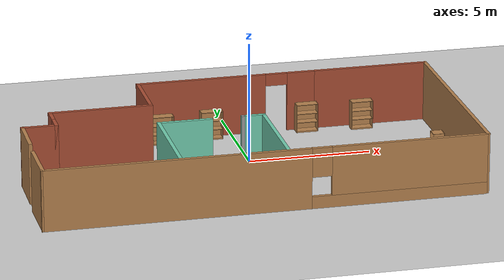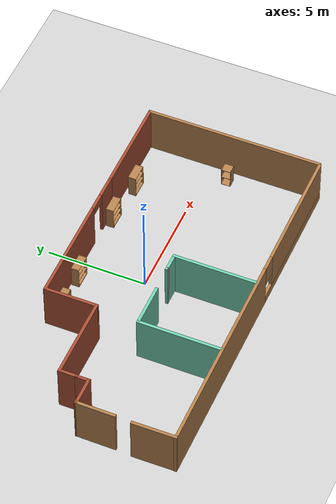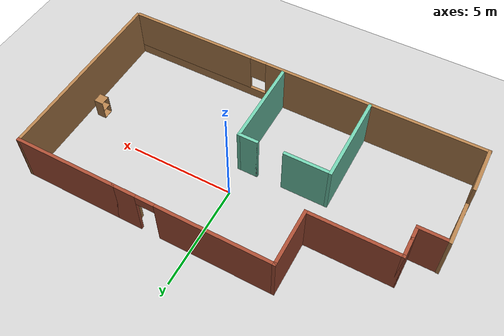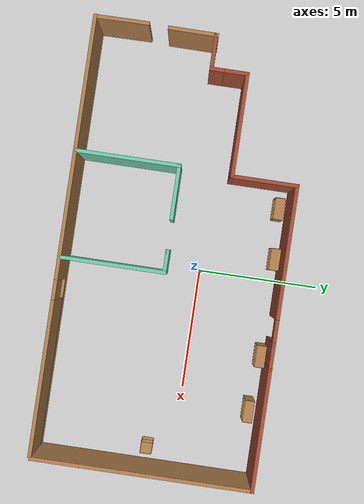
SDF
<sdf version="1.6">
 <world name="default">
  <light name="sun" type="directional">
   <pose>0 0 10 0 -0 0</pose>
   <diffuse>0.8 0.8 0.8 1</diffuse>
   <specular>0.2 0.2 0.2 1</specular>
   <attenuation>
    <range>1000</range>
    <constant>0.9</constant>
    <linear>0.01</linear>
    <quadratic>0.001</quadratic>
   </attenuation>
   <direction>-0.5 0.1 -0.9</direction>
  </light>
  <model name="ground_plane">
   <static>1</static>
   <link name="link">
    <collision name="collision">
     <geometry><plane><normal>0 0 1</normal><size>100 100</size></plane></geometry>
     <surface>
      <contact><collide_bitmask>65535</collide_bitmask></contact>
      <friction><ode><mu>100</mu><mu2>50</mu2></ode></friction>
     </surface>
    </collision>
    <visual name="visual">
     <cast_shadows>0</cast_shadows>
     <geometry><plane><normal>0 0 1</normal><size>100 100</size></plane></geometry>
     <material>
      <script><uri>file://media/materials/scripts/gazebo.material</uri><name>Gazebo/Grey</name></script>
     </material>
    </visual>
   </link>
  </model>
  <gravity>0 0 -9.8</gravity>
  <magnetic_field>6e-06 2.3e-05 -4.2e-05</magnetic_field>
  <atmosphere type="adiabatic"/>
  <physics name="default_physics" default="0" type="ode">
   <max_step_size>0.001</max_step_size>
   <real_time_factor>1</real_time_factor>
   <real_time_update_rate>1000</real_time_update_rate>
  </physics>
  <scene><ambient>0.4 0.4 0.4 1</ambient><background>0.7 0.7 0.7 1</background><shadows>1</shadows></scene>
  <spherical_coordinates>
   <surface_model>EARTH_WGS84</surface_model>
   <latitude_deg>0</latitude_deg>
   <longitude_deg>0</longitude_deg>
   <elevation>0</elevation>
   <heading_deg>0</heading_deg>
  </spherical_coordinates>
  <model name="smallspace.world">
   <pose>-0.55536 -1.14533 0 0 -0 0</pose>
   <link name="Wall_0">
    <collision name="Wall_0_Collision">
     <geometry><box><size>2.25 0.15 2.5</size></box></geometry>
     <pose>0 0 1.25 0 -0 0</pose>
    </collision>
    <visual name="Wall_0_Visual">
     <pose>0 0 1.25 0 -0 0</pose>
     <geometry><box><size>2.25 0.15 2.5</size></box></geometry>
     <material>
      <script><uri>file://media/materials/scripts/gazebo.material</uri><name>Gazebo/Wood</name></script>
      <ambient>1 1 1 1</ambient>
     </material>
     <meta><layer>0</layer></meta>
    </visual>
    <pose>-8.84464 -3.40467 0 0 -0 -1.56127</pose>
   </link>
   <link name="Wall_1">
    <pose>-0.044645 -4.45467 0 0 -0 0</pose>
    <visual name="Wall_1_Visual_0">
     <pose>-3.55125 0 1.25 0 -0 0</pose>
     <geometry><box><size>10.6475 0.15 2.5</size></box></geometry>
     <material>
      <script><uri>file://media/materials/scripts/gazebo.material</uri><name>Gazebo/Wood</name></script>
      <ambient>1 1 1 1</ambient>
     </material>
     <meta><layer>0</layer></meta>
    </visual>
    <collision name="Wall_1_Collision_0">
     <geometry><box><size>10.6475 0.15 2.5</size></box></geometry>
     <pose>-3.55125 0 1.25 0 -0 0</pose>
    </collision>
    <visual name="Wall_1_Visual_1">
     <pose>5.32375 0 0.25 0 -0 0</pose>
     <geometry><box><size>7.10251 0.15 0.5</size></box></geometry>
     <material>
      <script><uri>file://media/materials/scripts/gazebo.material</uri><name>Gazebo/Wood</name></script>
      <ambient>1 1 1 1</ambient>
     </material>
     <meta><layer>0</layer></meta>
    </visual>
    <collision name="Wall_1_Collision_1">
     <geometry><box><size>7.10251 0.15 0.5</size></box></geometry>
     <pose>5.32375 0 0.25 0 -0 0</pose>
    </collision>
    <visual name="Wall_1_Visual_2">
     <pose>5.72375 0 1.5 0 -0 0</pose>
     <geometry><box><size>6.30251 0.15 2</size></box></geometry>
     <material>
      <script><uri>file://media/materials/scripts/gazebo.material</uri><name>Gazebo/Wood</name></script>
      <ambient>1 1 1 1</ambient>
     </material>
     <meta><layer>0</layer></meta>
    </visual>
    <collision name="Wall_1_Collision_2">
     <geometry><box><size>6.30251 0.15 2</size></box></geometry>
     <pose>5.72375 0 1.5 0 -0 0</pose>
    </collision>
    <visual name="Wall_1_Visual_3">
     <pose>2.17249 0 1.9 0 -0 0</pose>
     <geometry><box><size>0.8 0.15 1.2</size></box></geometry>
     <material>
      <script><uri>file://media/materials/scripts/gazebo.material</uri><name>Gazebo/Wood</name></script>
      <ambient>1 1 1 1</ambient>
     </material>
     <meta><layer>0</layer></meta>
    </visual>
    <collision name="Wall_1_Collision_3">
     <geometry><box><size>0.8 0.15 1.2</size></box></geometry>
     <pose>2.17249 0 1.9 0 -0 0</pose>
    </collision>
   </link>
   <link name="Wall_11">
    <collision name="Wall_11_Collision">
     <geometry><box><size>0.75 0.15 2.5</size></box></geometry>
     <pose>0 0 1.25 0 -0 0</pose>
    </collision>
    <visual name="Wall_11_Visual">
     <pose>0 0 1.25 0 -0 0</pose>
     <geometry><box><size>0.75 0.15 2.5</size></box></geometry>
     <material>
      <script><uri>file://media/materials/scripts/gazebo.material</uri><name>Gazebo/Bricks</name></script>
      <ambient>1 1 1 1</ambient>
     </material>
     <meta><layer>0</layer></meta>
    </visual>
    <pose>-7.44465 0.705332 0 0 -0 1.5708</pose>
   </link>
   <link name="Wall_12">
    <collision name="Wall_12_Collision">
     <geometry><box><size>1 0.15 2.5</size></box></geometry>
     <pose>0 0 1.25 0 -0 0</pose>
    </collision>
    <visual name="Wall_12_Visual">
     <pose>0 0 1.25 0 -0 0</pose>
     <geometry><box><size>1 0.15 2.5</size></box></geometry>
     <material>
      <script><uri>file://media/materials/scripts/gazebo.material</uri><name>Gazebo/Bricks</name></script>
      <ambient>1 1 1 1</ambient>
     </material>
     <meta><layer>0</layer></meta>
    </visual>
    <pose>-7.44465 1.43033 0 0 -0 1.5708</pose>
   </link>
   <link name="Wall_13">
    <collision name="Wall_13_Collision">
     <geometry><box><size>4.25 0.15 2.5</size></box></geometry>
     <pose>0 0 1.25 0 -0 0</pose>
    </collision>
    <visual name="Wall_13_Visual">
     <pose>0 0 1.25 0 -0 0</pose>
     <geometry><box><size>4.25 0.15 2.5</size></box></geometry>
     <material>
      <script><uri>file://media/materials/scripts/gazebo.material</uri><name>Gazebo/Bricks</name></script>
      <ambient>1 1 1 1</ambient>
     </material>
     <meta><layer>0</layer></meta>
    </visual>
    <pose>-5.39464 1.85533 0 0 -0 0</pose>
   </link>
   <link name="Wall_14">
    <collision name="Wall_14_Collision">
     <geometry><box><size>2.75 0.15 2.5</size></box></geometry>
     <pose>0 0 1.25 0 -0 0</pose>
    </collision>
    <visual name="Wall_14_Visual">
     <pose>0 0 1.25 0 -0 0</pose>
     <geometry><box><size>2.75 0.15 2.5</size></box></geometry>
     <material>
      <script><uri>file://media/materials/scripts/gazebo.material</uri><name>Gazebo/Bricks</name></script>
      <ambient>1 1 1 1</ambient>
     </material>
     <meta><layer>0</layer></meta>
    </visual>
    <pose>-3.34465 3.15533 0 0 -0 1.5708</pose>
   </link>
   <link name="Wall_15">
    <pose>0.330355 4.45533 0 0 -0 0</pose>
    <visual name="Wall_15_Visual_0">
     <pose>-1.03396 0 1.25 0 -0 0</pose>
     <geometry><box><size>5.43209 0.15 2.5</size></box></geometry>
     <material>
      <script><uri>file://media/materials/scripts/gazebo.material</uri><name>Gazebo/Bricks</name></script>
      <ambient>0.996078 0.47451 0.0196078 1</ambient>
     </material>
     <meta><layer>0</layer></meta>
    </visual>
    <collision name="Wall_15_Collision_0">
     <geometry><box><size>5.43209 0.15 2.5</size></box></geometry>
     <pose>-1.03396 0 1.25 0 -0 0</pose>
    </collision>
    <visual name="Wall_15_Visual_1">
     <pose>3.16604 0 1.25 0 -0 0</pose>
     <geometry><box><size>1.16791 0.15 2.5</size></box></geometry>
     <material>
      <script><uri>file://media/materials/scripts/gazebo.material</uri><name>Gazebo/Bricks</name></script>
      <ambient>0.996078 0.47451 0.0196078 1</ambient>
     </material>
     <meta><layer>0</layer></meta>
    </visual>
    <collision name="Wall_15_Collision_1">
     <geometry><box><size>1.16791 0.15 2.5</size></box></geometry>
     <pose>3.16604 0 1.25 0 -0 0</pose>
    </collision>
    <visual name="Wall_15_Visual_2">
     <pose>2.13209 0 2.25 0 -0 0</pose>
     <geometry><box><size>0.9 0.15 0.5</size></box></geometry>
     <material>
      <script><uri>file://media/materials/scripts/gazebo.material</uri><name>Gazebo/Bricks</name></script>
      <ambient>0.996078 0.47451 0.0196078 1</ambient>
     </material>
     <meta><layer>0</layer></meta>
    </visual>
    <collision name="Wall_15_Collision_2">
     <geometry><box><size>0.9 0.15 0.5</size></box></geometry>
     <pose>2.13209 0 2.25 0 -0 0</pose>
    </collision>
   </link>
   <link name="Wall_16">
    <collision name="Wall_16_Collision">
     <geometry><box><size>5 0.15 2.5</size></box></geometry>
     <pose>0 0 1.25 0 -0 0</pose>
    </collision>
    <visual name="Wall_16_Visual">
     <pose>0 0 1.25 0 -0 0</pose>
     <geometry><box><size>5 0.15 2.5</size></box></geometry>
     <material>
      <script><uri>file://media/materials/scripts/gazebo.material</uri><name>Gazebo/Bricks</name></script>
      <ambient>0.996078 0.47451 0.0196078 1</ambient>
     </material>
     <meta><layer>0</layer></meta>
    </visual>
    <pose>6.43035 4.45533 0 0 -0 0</pose>
   </link>
   <link name="Wall_17">
    <collision name="Wall_17_Collision">
     <geometry><box><size>9 0.15 2.5</size></box></geometry>
     <pose>0 0 1.25 0 -0 0</pose>
    </collision>
    <visual name="Wall_17_Visual">
     <pose>0 0 1.25 0 -0 0</pose>
     <geometry><box><size>9 0.15 2.5</size></box></geometry>
     <material>
      <script><uri>file://media/materials/scripts/gazebo.material</uri><name>Gazebo/Wood</name></script>
      <ambient>1 1 1 1</ambient>
     </material>
     <meta><layer>0</layer></meta>
    </visual>
    <pose>8.85535 0.030331 0 0 -0 -1.5708</pose>
   </link>
   <link name="Wall_19">
    <collision name="Wall_19_Collision">
     <geometry><box><size>4.25 0.15 2.5</size></box></geometry>
     <pose>0 0 1.25 0 -0 0</pose>
    </collision>
    <visual name="Wall_19_Visual">
     <pose>0 0 1.25 0 -0 0</pose>
     <geometry><box><size>4.25 0.15 2.5</size></box></geometry>
     <material>
      <script><uri>file://media/materials/scripts/gazebo.material</uri><name>Gazebo/Grey</name></script>
      <ambient>0.435294 0.796078 0.67451 1</ambient>
     </material>
     <meta><layer>0</layer></meta>
    </visual>
    <pose>-3.4598 -2.33693 0 0 -0 1.5708</pose>
   </link>
   <link name="Wall_20">
    <collision name="Wall_20_Collision">
     <geometry><box><size>2.25 0.15 2.5</size></box></geometry>
     <pose>0 0 1.25 0 -0 0</pose>
    </collision>
    <visual name="Wall_20_Visual">
     <pose>0 0 1.25 0 -0 0</pose>
     <geometry><box><size>2.25 0.15 2.5</size></box></geometry>
     <material>
      <script><uri>file://media/materials/scripts/gazebo.material</uri><name>Gazebo/Grey</name></script>
      <ambient>0.435294 0.796078 0.67451 1</ambient>
     </material>
     <meta><layer>0</layer></meta>
    </visual>
    <pose>-2.4098 -0.286933 0 0 -0 0</pose>
   </link>
   <link name="Wall_22">
    <collision name="Wall_22_Collision">
     <geometry><box><size>1 0.15 2.5</size></box></geometry>
     <pose>0 0 1.25 0 -0 0</pose>
    </collision>
    <visual name="Wall_22_Visual">
     <pose>0 0 1.25 0 -0 0</pose>
     <geometry><box><size>1 0.15 2.5</size></box></geometry>
     <material>
      <script><uri>file://media/materials/scripts/gazebo.material</uri><name>Gazebo/Grey</name></script>
      <ambient>0.435294 0.796078 0.67451 1</ambient>
     </material>
     <meta><layer>0</layer></meta>
    </visual>
    <pose>0.386204 -0.250933 0 0 -0 0</pose>
   </link>
   <link name="Wall_23">
    <collision name="Wall_23_Collision">
     <geometry><box><size>4.25 0.15 2.5</size></box></geometry>
     <pose>0 0 1.25 0 -0 0</pose>
    </collision>
    <visual name="Wall_23_Visual">
     <pose>0 0 1.25 0 -0 0</pose>
     <geometry><box><size>4.25 0.15 2.5</size></box></geometry>
     <material>
      <script><uri>file://media/materials/scripts/gazebo.material</uri><name>Gazebo/Grey</name></script>
      <ambient>0.435294 0.796078 0.67451 1</ambient>
     </material>
     <meta><layer>0</layer></meta>
    </visual>
    <pose>0.811204 -2.30093 0 0 -0 -1.5708</pose>
   </link>
   <link name="Wall_25">
    <collision name="Wall_25_Collision">
     <geometry><box><size>0.15 0.15 2.5</size></box></geometry>
     <pose>0 0 1.25 0 -0 0</pose>
    </collision>
    <visual name="Wall_25_Visual">
     <pose>0 0 1.25 0 -0 0</pose>
     <geometry><box><size>0.15 0.15 2.5</size></box></geometry>
     <material>
      <script><uri>file://media/materials/scripts/gazebo.material</uri><name>Gazebo/Grey</name></script>
      <ambient>1 1 1 1</ambient>
     </material>
     <meta><layer>0</layer></meta>
    </visual>
    <pose>-0.038796 -0.250933 0 0 -0 0</pose>
   </link>
   <link name="Wall_26">
    <collision name="Wall_26_Collision">
     <geometry><box><size>0.15 0.15 2.5</size></box></geometry>
     <pose>0 0 1.25 0 -0 0</pose>
    </collision>
    <visual name="Wall_26_Visual">
     <pose>0 0 1.25 0 -0 0</pose>
     <geometry><box><size>0.15 0.15 2.5</size></box></geometry>
     <material>
      <script><uri>file://media/materials/scripts/gazebo.material</uri><name>Gazebo/Grey</name></script>
      <ambient>1 1 1 1</ambient>
     </material>
     <meta><layer>0</layer></meta>
    </visual>
    <pose>-0.038796 -0.250933 0 0 -0 0</pose>
   </link>
   <link name="Wall_7">
    <collision name="Wall_7_Collision">
     <geometry><box><size>1.5 0.15 2.5</size></box></geometry>
     <pose>0 0 1.25 0 -0 0</pose>
    </collision>
    <visual name="Wall_7_Visual">
     <pose>0 0 1.25 0 -0 0</pose>
     <geometry><box><size>1.5 0.15 2.5</size></box></geometry>
     <material>
      <script><uri>file://media/materials/scripts/gazebo.material</uri><name>Gazebo/Bricks</name></script>
      <ambient>1 1 1 1</ambient>
     </material>
     <meta><layer>0</layer></meta>
    </visual>
    <pose>-8.11965 0.405331 0 0 -0 3.14159</pose>
   </link>
   <link name="Wall_8">
    <collision name="Wall_8_Collision">
     <geometry><box><size>2.03003 0.15 2.5</size></box></geometry>
     <pose>0 0 1.25 0 -0 0</pose>
    </collision>
    <visual name="Wall_8_Visual">
     <pose>0 0 1.25 0 -0 0</pose>
     <geometry><box><size>2.03003 0.15 2.5</size></box></geometry>
     <material>
      <script><uri>file://media/materials/scripts/gazebo.material</uri><name>Gazebo/Wood</name></script>
      <ambient>1 1 1 1</ambient>
     </material>
     <meta><layer>0</layer></meta>
    </visual>
    <pose>-8.79964 -0.514668 0 0 -0 -1.57611</pose>
   </link>
   <static>1</static>
  </model>
  <model name="bookshelf">
   <static>1</static>
   <link name="link">
    <inertial><mass>1</mass></inertial>
    <collision name="back">
     <pose>0 0.005 0.6 0 -0 0</pose>
     <geometry><box><size>0.9 0.01 1.2</size></box></geometry>
    </collision>
    <visual name="visual1">
     <pose>0 0.005 0.6 0 -0 0</pose>
     <geometry><box><size>0.9 0.01 1.2</size></box></geometry>
     <material>
      <script><uri>file://media/materials/scripts/gazebo.material</uri><name>Gazebo/Wood</name></script>
     </material>
    </visual>
    <collision name="left_side">
     <pose>0.45 -0.195 0.6 0 -0 0</pose>
     <geometry><box><size>0.02 0.4 1.2</size></box></geometry>
    </collision>
    <visual name="visual2">
     <pose>0.45 -0.195 0.6 0 -0 0</pose>
     <geometry><box><size>0.02 0.4 1.2</size></box></geometry>
     <material>
      <script><uri>file://media/materials/scripts/gazebo.material</uri><name>Gazebo/Wood</name></script>
     </material>
    </visual>
    <collision name="right_side">
     <pose>-0.45 -0.195 0.6 0 -0 0</pose>
     <geometry><box><size>0.02 0.4 1.2</size></box></geometry>
    </collision>
    <visual name="visual3">
     <pose>-0.45 -0.195 0.6 0 -0 0</pose>
     <geometry><box><size>0.02 0.4 1.2</size></box></geometry>
     <material>
      <script><uri>file://media/materials/scripts/gazebo.material</uri><name>Gazebo/Wood</name></script>
     </material>
    </visual>
    <collision name="bottom">
     <pose>0 -0.195 0.03 0 -0 0</pose>
     <geometry><box><size>0.88 0.4 0.06</size></box></geometry>
    </collision>
    <visual name="visual4">
     <pose>0 -0.195 0.03 0 -0 0</pose>
     <geometry><box><size>0.88 0.4 0.06</size></box></geometry>
     <material>
      <script><uri>file://media/materials/scripts/gazebo.material</uri><name>Gazebo/Wood</name></script>
     </material>
    </visual>
    <collision name="top">
     <pose>0 -0.195 1.19 0 -0 0</pose>
     <geometry><box><size>0.88 0.4 0.02</size></box></geometry>
    </collision>
    <visual name="visual5">
     <pose>0 -0.195 1.19 0 -0 0</pose>
     <geometry><box><size>0.88 0.4 0.02</size></box></geometry>
     <material>
      <script><uri>file://media/materials/scripts/gazebo.material</uri><name>Gazebo/Wood</name></script>
     </material>
    </visual>
    <collision name="low_shelf">
     <pose>0 -0.195 0.43 0 -0 0</pose>
     <geometry><box><size>0.88 0.4 0.02</size></box></geometry>
    </collision>
    <visual name="visual6">
     <pose>0 -0.195 0.43 0 -0 0</pose>
     <geometry><box><size>0.88 0.4 0.02</size></box></geometry>
     <material>
      <script><uri>file://media/materials/scripts/gazebo.material</uri><name>Gazebo/Wood</name></script>
     </material>
    </visual>
    <collision name="high_shelf">
     <pose>0 -0.195 0.8 0 -0 0</pose>
     <geometry><box><size>0.88 0.4 0.02</size></box></geometry>
    </collision>
    <visual name="visual7">
     <pose>0 -0.195 0.8 0 -0 0</pose>
     <geometry><box><size>0.88 0.4 0.02</size></box></geometry>
     <material>
      <script><uri>file://media/materials/scripts/gazebo.material</uri><name>Gazebo/Wood</name></script>
     </material>
    </visual>
   </link>
   <pose>5.43464 3.03113 0 0 -0 0</pose>
  </model>
  <model name="bookshelf_clone">
   <static>1</static>
   <link name="link">
    <inertial><mass>1</mass></inertial>
    <collision name="back">
     <pose>0 0.005 0.6 0 -0 0</pose>
     <geometry><box><size>0.9 0.01 1.2</size></box></geometry>
    </collision>
    <visual name="visual1">
     <pose>0 0.005 0.6 0 -0 0</pose>
     <geometry><box><size>0.9 0.01 1.2</size></box></geometry>
     <material>
      <script><uri>file://media/materials/scripts/gazebo.material</uri><name>Gazebo/Wood</name></script>
     </material>
    </visual>
    <collision name="left_side">
     <pose>0.45 -0.195 0.6 0 -0 0</pose>
     <geometry><box><size>0.02 0.4 1.2</size></box></geometry>
    </collision>
    <visual name="visual2">
     <pose>0.45 -0.195 0.6 0 -0 0</pose>
     <geometry><box><size>0.02 0.4 1.2</size></box></geometry>
     <material>
      <script><uri>file://media/materials/scripts/gazebo.material</uri><name>Gazebo/Wood</name></script>
     </material>
    </visual>
    <collision name="right_side">
     <pose>-0.45 -0.195 0.6 0 -0 0</pose>
     <geometry><box><size>0.02 0.4 1.2</size></box></geometry>
    </collision>
    <visual name="visual3">
     <pose>-0.45 -0.195 0.6 0 -0 0</pose>
     <geometry><box><size>0.02 0.4 1.2</size></box></geometry>
     <material>
      <script><uri>file://media/materials/scripts/gazebo.material</uri><name>Gazebo/Wood</name></script>
     </material>
    </visual>
    <collision name="bottom">
     <pose>0 -0.195 0.03 0 -0 0</pose>
     <geometry><box><size>0.88 0.4 0.06</size></box></geometry>
    </collision>
    <visual name="visual4">
     <pose>0 -0.195 0.03 0 -0 0</pose>
     <geometry><box><size>0.88 0.4 0.06</size></box></geometry>
     <material>
      <script><uri>file://media/materials/scripts/gazebo.material</uri><name>Gazebo/Wood</name></script>
     </material>
    </visual>
    <collision name="top">
     <pose>0 -0.195 1.19 0 -0 0</pose>
     <geometry><box><size>0.88 0.4 0.02</size></box></geometry>
    </collision>
    <visual name="visual5">
     <pose>0 -0.195 1.19 0 -0 0</pose>
     <geometry><box><size>0.88 0.4 0.02</size></box></geometry>
     <material>
      <script><uri>file://media/materials/scripts/gazebo.material</uri><name>Gazebo/Wood</name></script>
     </material>
    </visual>
    <collision name="low_shelf">
     <pose>0 -0.195 0.43 0 -0 0</pose>
     <geometry><box><size>0.88 0.4 0.02</size></box></geometry>
    </collision>
    <visual name="visual6">
     <pose>0 -0.195 0.43 0 -0 0</pose>
     <geometry><box><size>0.88 0.4 0.02</size></box></geometry>
     <material>
      <script><uri>file://media/materials/scripts/gazebo.material</uri><name>Gazebo/Wood</name></script>
     </material>
    </visual>
    <collision name="high_shelf">
     <pose>0 -0.195 0.8 0 -0 0</pose>
     <geometry><box><size>0.88 0.4 0.02</size></box></geometry>
    </collision>
    <visual name="visual7">
     <pose>0 -0.195 0.8 0 -0 0</pose>
     <geometry><box><size>0.88 0.4 0.02</size></box></geometry>
     <material>
      <script><uri>file://media/materials/scripts/gazebo.material</uri><name>Gazebo/Wood</name></script>
     </material>
    </visual>
   </link>
   <pose>-3 3.06374 0 0 -0 0</pose>
  </model>
  <model name="bookshelf_clone_0">
   <static>1</static>
   <link name="link">
    <inertial><mass>1</mass></inertial>
    <collision name="back">
     <pose>0 0.005 0.6 0 -0 0</pose>
     <geometry><box><size>0.9 0.01 1.2</size></box></geometry>
    </collision>
    <visual name="visual1">
     <pose>0 0.005 0.6 0 -0 0</pose>
     <geometry><box><size>0.9 0.01 1.2</size></box></geometry>
     <material>
      <script><uri>file://media/materials/scripts/gazebo.material</uri><name>Gazebo/Wood</name></script>
     </material>
    </visual>
    <collision name="left_side">
     <pose>0.45 -0.195 0.6 0 -0 0</pose>
     <geometry><box><size>0.02 0.4 1.2</size></box></geometry>
    </collision>
    <visual name="visual2">
     <pose>0.45 -0.195 0.6 0 -0 0</pose>
     <geometry><box><size>0.02 0.4 1.2</size></box></geometry>
     <material>
      <script><uri>file://media/materials/scripts/gazebo.material</uri><name>Gazebo/Wood</name></script>
     </material>
    </visual>
    <collision name="right_side">
     <pose>-0.45 -0.195 0.6 0 -0 0</pose>
     <geometry><box><size>0.02 0.4 1.2</size></box></geometry>
    </collision>
    <visual name="visual3">
     <pose>-0.45 -0.195 0.6 0 -0 0</pose>
     <geometry><box><size>0.02 0.4 1.2</size></box></geometry>
     <material>
      <script><uri>file://media/materials/scripts/gazebo.material</uri><name>Gazebo/Wood</name></script>
     </material>
    </visual>
    <collision name="bottom">
     <pose>0 -0.195 0.03 0 -0 0</pose>
     <geometry><box><size>0.88 0.4 0.06</size></box></geometry>
    </collision>
    <visual name="visual4">
     <pose>0 -0.195 0.03 0 -0 0</pose>
     <geometry><box><size>0.88 0.4 0.06</size></box></geometry>
     <material>
      <script><uri>file://media/materials/scripts/gazebo.material</uri><name>Gazebo/Wood</name></script>
     </material>
    </visual>
    <collision name="top">
     <pose>0 -0.195 1.19 0 -0 0</pose>
     <geometry><box><size>0.88 0.4 0.02</size></box></geometry>
    </collision>
    <visual name="visual5">
     <pose>0 -0.195 1.19 0 -0 0</pose>
     <geometry><box><size>0.88 0.4 0.02</size></box></geometry>
     <material>
      <script><uri>file://media/materials/scripts/gazebo.material</uri><name>Gazebo/Wood</name></script>
     </material>
    </visual>
    <collision name="low_shelf">
     <pose>0 -0.195 0.43 0 -0 0</pose>
     <geometry><box><size>0.88 0.4 0.02</size></box></geometry>
    </collision>
    <visual name="visual6">
     <pose>0 -0.195 0.43 0 -0 0</pose>
     <geometry><box><size>0.88 0.4 0.02</size></box></geometry>
     <material>
      <script><uri>file://media/materials/scripts/gazebo.material</uri><name>Gazebo/Wood</name></script>
     </material>
    </visual>
    <collision name="high_shelf">
     <pose>0 -0.195 0.8 0 -0 0</pose>
     <geometry><box><size>0.88 0.4 0.02</size></box></geometry>
    </collision>
    <visual name="visual7">
     <pose>0 -0.195 0.8 0 -0 0</pose>
     <geometry><box><size>0.88 0.4 0.02</size></box></geometry>
     <material>
      <script><uri>file://media/materials/scripts/gazebo.material</uri><name>Gazebo/Wood</name></script>
     </material>
    </visual>
   </link>
   <pose>-0.907932 3.19398 0 0 -0 0</pose>
  </model>
  <model name="bookshelf_clone_0_clone">
   <static>1</static>
   <link name="link">
    <inertial><mass>1</mass></inertial>
    <collision name="back">
     <pose>0 0.005 0.6 0 -0 0</pose>
     <geometry><box><size>0.9 0.01 1.2</size></box></geometry>
    </collision>
    <visual name="visual1">
     <pose>0 0.005 0.6 0 -0 0</pose>
     <geometry><box><size>0.9 0.01 1.2</size></box></geometry>
     <material>
      <script><uri>file://media/materials/scripts/gazebo.material</uri><name>Gazebo/Wood</name></script>
     </material>
    </visual>
    <collision name="left_side">
     <pose>0.45 -0.195 0.6 0 -0 0</pose>
     <geometry><box><size>0.02 0.4 1.2</size></box></geometry>
    </collision>
    <visual name="visual2">
     <pose>0.45 -0.195 0.6 0 -0 0</pose>
     <geometry><box><size>0.02 0.4 1.2</size></box></geometry>
     <material>
      <script><uri>file://media/materials/scripts/gazebo.material</uri><name>Gazebo/Wood</name></script>
     </material>
    </visual>
    <collision name="right_side">
     <pose>-0.45 -0.195 0.6 0 -0 0</pose>
     <geometry><box><size>0.02 0.4 1.2</size></box></geometry>
    </collision>
    <visual name="visual3">
     <pose>-0.45 -0.195 0.6 0 -0 0</pose>
     <geometry><box><size>0.02 0.4 1.2</size></box></geometry>
     <material>
      <script><uri>file://media/materials/scripts/gazebo.material</uri><name>Gazebo/Wood</name></script>
     </material>
    </visual>
    <collision name="bottom">
     <pose>0 -0.195 0.03 0 -0 0</pose>
     <geometry><box><size>0.88 0.4 0.06</size></box></geometry>
    </collision>
    <visual name="visual4">
     <pose>0 -0.195 0.03 0 -0 0</pose>
     <geometry><box><size>0.88 0.4 0.06</size></box></geometry>
     <material>
      <script><uri>file://media/materials/scripts/gazebo.material</uri><name>Gazebo/Wood</name></script>
     </material>
    </visual>
    <collision name="top">
     <pose>0 -0.195 1.19 0 -0 0</pose>
     <geometry><box><size>0.88 0.4 0.02</size></box></geometry>
    </collision>
    <visual name="visual5">
     <pose>0 -0.195 1.19 0 -0 0</pose>
     <geometry><box><size>0.88 0.4 0.02</size></box></geometry>
     <material>
      <script><uri>file://media/materials/scripts/gazebo.material</uri><name>Gazebo/Wood</name></script>
     </material>
    </visual>
    <collision name="low_shelf">
     <pose>0 -0.195 0.43 0 -0 0</pose>
     <geometry><box><size>0.88 0.4 0.02</size></box></geometry>
    </collision>
    <visual name="visual6">
     <pose>0 -0.195 0.43 0 -0 0</pose>
     <geometry><box><size>0.88 0.4 0.02</size></box></geometry>
     <material>
      <script><uri>file://media/materials/scripts/gazebo.material</uri><name>Gazebo/Wood</name></script>
     </material>
    </visual>
    <collision name="high_shelf">
     <pose>0 -0.195 0.8 0 -0 0</pose>
     <geometry><box><size>0.88 0.4 0.02</size></box></geometry>
    </collision>
    <visual name="visual7">
     <pose>0 -0.195 0.8 0 -0 0</pose>
     <geometry><box><size>0.88 0.4 0.02</size></box></geometry>
     <material>
      <script><uri>file://media/materials/scripts/gazebo.material</uri><name>Gazebo/Wood</name></script>
     </material>
    </visual>
   </link>
   <pose>3.12832 3.1923 0 0 -0 0</pose>
  </model>
  <model name="cabinet">
   <static>1</static>
   <link name="cabinet_bottom_plate">
    <inertial>
     <pose>0 0 -1 0 -0 0</pose>
     <inertia><ixx>2.05</ixx><ixy>0</ixy><ixz>0</ixz><iyy>2.05</iyy><iyz>0</iyz><izz>2.05</izz></inertia>
     <mass>25</mass>
    </inertial>
    <collision name="cabinet_bottom_plate_geom">
     <pose>0 0 0.01 0 -0 0</pose>
     <geometry><box><size>0.45 0.45 0.02</size></box></geometry>
    </collision>
    <visual name="cabinet_bottom_plate_geom_visual">
     <pose>0 0 0.01 0 -0 0</pose>
     <geometry><box><size>0.45 0.45 0.02</size></box></geometry>
     <material>
      <script><uri>file://media/materials/scripts/gazebo.material</uri><name>Gazebo/Wood</name></script>
     </material>
    </visual>
    <collision name="cabinet_bottom_plate_geom_cabinet_back_plate">
     <pose>0.235 0 0.51 0 -0 0</pose>
     <geometry><box><size>0.02 0.45 1.02</size></box></geometry>
    </collision>
    <visual name="cabinet_bottom_plate_geom_cabinet_back_plate_visual">
     <pose>0.235 0 0.51 0 -0 0</pose>
     <geometry><box><size>0.02 0.45 1.02</size></box></geometry>
     <material>
      <script><uri>file://media/materials/scripts/gazebo.material</uri><name>Gazebo/Wood</name></script>
     </material>
    </visual>
    <collision name="cabinet_bottom_plate_geom_cabinet_left_plate">
     <pose>0 0.235 0.51 0 -0 0</pose>
     <geometry><box><size>0.45 0.02 1.02</size></box></geometry>
    </collision>
    <visual name="cabinet_bottom_plate_geom_cabinet_left_plate_visual">
     <pose>0 0.235 0.51 0 -0 0</pose>
     <geometry><box><size>0.45 0.02 1.02</size></box></geometry>
     <material>
      <script><uri>file://media/materials/scripts/gazebo.material</uri><name>Gazebo/Wood</name></script>
     </material>
    </visual>
    <collision name="cabinet_bottom_plate_geom_cabinet_middle_plate">
     <pose>0 0 0.51 0 -0 0</pose>
     <geometry><box><size>0.45 0.45 0.02</size></box></geometry>
    </collision>
    <visual name="cabinet_bottom_plate_geom_cabinet_middle_plate_visual">
     <pose>0 0 0.51 0 -0 0</pose>
     <geometry><box><size>0.45 0.45 0.02</size></box></geometry>
     <material>
      <script><uri>file://media/materials/scripts/gazebo.material</uri><name>Gazebo/Wood</name></script>
     </material>
    </visual>
    <collision name="cabinet_bottom_plate_geom_cabinet_right_plate">
     <pose>0 -0.235 0.51 0 -0 0</pose>
     <geometry><box><size>0.45 0.02 1.02</size></box></geometry>
    </collision>
    <visual name="cabinet_bottom_plate_geom_cabinet_right_plate_visual">
     <pose>0 -0.235 0.51 0 -0 0</pose>
     <geometry><box><size>0.45 0.02 1.02</size></box></geometry>
     <material>
      <script><uri>file://media/materials/scripts/gazebo.material</uri><name>Gazebo/Wood</name></script>
     </material>
    </visual>
    <collision name="cabinet_bottom_plate_geom_cabinet_top_plate">
     <pose>0 0 1.01 0 -0 0</pose>
     <geometry><box><size>0.45 0.45 0.02</size></box></geometry>
    </collision>
    <visual name="cabinet_bottom_plate_geom_cabinet_top_plate_visual">
     <pose>0 0 1.01 0 -0 0</pose>
     <geometry><box><size>0.45 0.45 0.02</size></box></geometry>
     <material>
      <script><uri>file://media/materials/scripts/gazebo.material</uri><name>Gazebo/Wood</name></script>
     </material>
    </visual>
   </link>
   <pose>7.56644 -1.11467 0 0 -0 0</pose>
  </model>
 </world>
</sdf>
